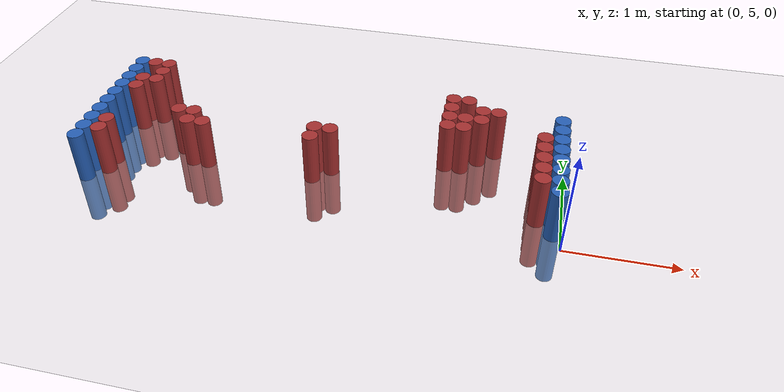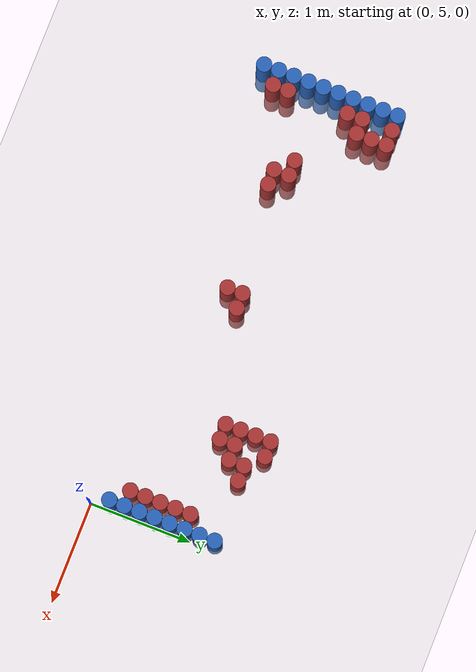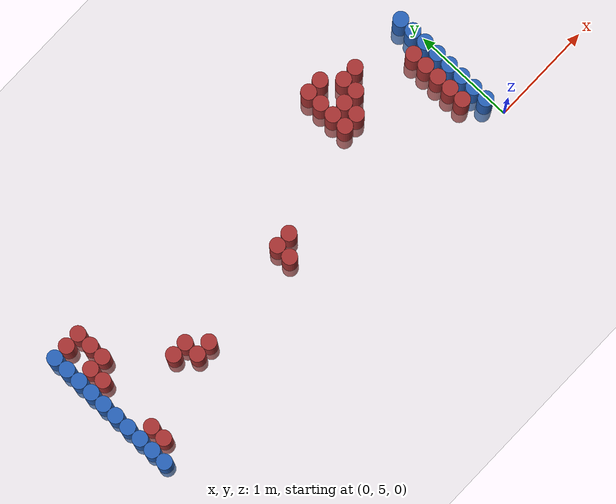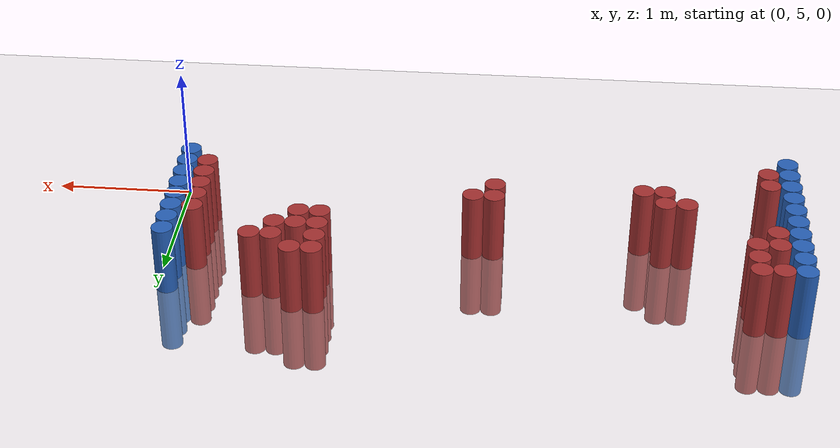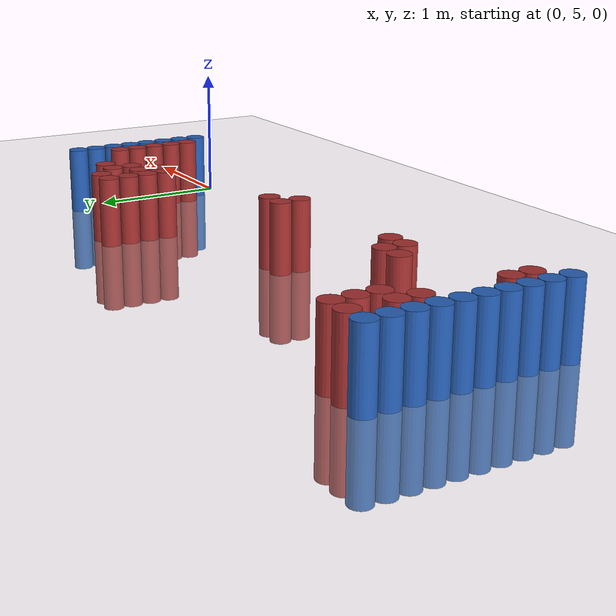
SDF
<sdf version="1.6">
 <world name="default">
  <model name="ground_plane">
   <static>1</static>
   <link name="link">
    <collision name="collision">
     <geometry><plane><normal>0 0 1</normal><size>100 100</size></plane></geometry>
     <surface><friction><ode><mu>100</mu><mu2>50</mu2></ode></friction></surface>
    </collision>
    <visual name="visual">
     <cast_shadows>0</cast_shadows>
     <geometry><plane><normal>0 0 1</normal><size>100 100</size></plane></geometry>
     <material>
      <script><uri>file://media/materials/scripts/gazebo.material</uri><name>Gazebo/Grey</name></script>
     </material>
    </visual>
   </link>
  </model>
  <model name="unit_cylinder_95">
   <static>1</static>
   <pose>-4.425000 5.025000 0.000000 0.000000 0.000000 0.000000</pose>
   <link name="link">
    <inertial>
     <mass>1</mass>
     <inertia><ixx>0.145833</ixx><ixy>0</ixy><ixz>0</ixz><iyy>0.145833</iyy><iyz>0</iyz><izz>0.125</izz></inertia>
    </inertial>
    <collision name="collision">
     <geometry><cylinder><radius>0.075000</radius><length>1</length></cylinder></geometry>
    </collision>
    <visual name="visual">
     <geometry><cylinder><radius>0.075000</radius><length>1</length></cylinder></geometry>
     <material>
      <ambient>0.152000 0.379000 0.720000 1</ambient>
      <diffuse>0.152000 0.379000 0.720000 1</diffuse>
     </material>
     <material>
      <script><name>Gazebo/Grey</name><uri>file://media/materials/scripts/gazebo.material</uri></script>
     </material>
    </visual>
   </link>
  </model>
  <model name="unit_cylinder_96">
   <static>1</static>
   <pose>-4.425000 5.175000 0.000000 0.000000 0.000000 0.000000</pose>
   <link name="link">
    <inertial>
     <mass>1</mass>
     <inertia><ixx>0.145833</ixx><ixy>0</ixy><ixz>0</ixz><iyy>0.145833</iyy><iyz>0</iyz><izz>0.125</izz></inertia>
    </inertial>
    <collision name="collision">
     <geometry><cylinder><radius>0.075000</radius><length>1</length></cylinder></geometry>
    </collision>
    <visual name="visual">
     <geometry><cylinder><radius>0.075000</radius><length>1</length></cylinder></geometry>
     <material>
      <ambient>0.152000 0.379000 0.720000 1</ambient>
      <diffuse>0.152000 0.379000 0.720000 1</diffuse>
     </material>
     <material>
      <script><name>Gazebo/Grey</name><uri>file://media/materials/scripts/gazebo.material</uri></script>
     </material>
    </visual>
   </link>
  </model>
  <model name="unit_cylinder_97">
   <static>1</static>
   <pose>-4.425000 5.325000 0.000000 0.000000 0.000000 0.000000</pose>
   <link name="link">
    <inertial>
     <mass>1</mass>
     <inertia><ixx>0.145833</ixx><ixy>0</ixy><ixz>0</ixz><iyy>0.145833</iyy><iyz>0</iyz><izz>0.125</izz></inertia>
    </inertial>
    <collision name="collision">
     <geometry><cylinder><radius>0.075000</radius><length>1</length></cylinder></geometry>
    </collision>
    <visual name="visual">
     <geometry><cylinder><radius>0.075000</radius><length>1</length></cylinder></geometry>
     <material>
      <ambient>0.152000 0.379000 0.720000 1</ambient>
      <diffuse>0.152000 0.379000 0.720000 1</diffuse>
     </material>
     <material>
      <script><name>Gazebo/Grey</name><uri>file://media/materials/scripts/gazebo.material</uri></script>
     </material>
    </visual>
   </link>
  </model>
  <model name="unit_cylinder_98">
   <static>1</static>
   <pose>-4.425000 5.475000 0.000000 0.000000 0.000000 0.000000</pose>
   <link name="link">
    <inertial>
     <mass>1</mass>
     <inertia><ixx>0.145833</ixx><ixy>0</ixy><ixz>0</ixz><iyy>0.145833</iyy><iyz>0</iyz><izz>0.125</izz></inertia>
    </inertial>
    <collision name="collision">
     <geometry><cylinder><radius>0.075000</radius><length>1</length></cylinder></geometry>
    </collision>
    <visual name="visual">
     <geometry><cylinder><radius>0.075000</radius><length>1</length></cylinder></geometry>
     <material>
      <ambient>0.152000 0.379000 0.720000 1</ambient>
      <diffuse>0.152000 0.379000 0.720000 1</diffuse>
     </material>
     <material>
      <script><name>Gazebo/Grey</name><uri>file://media/materials/scripts/gazebo.material</uri></script>
     </material>
    </visual>
   </link>
  </model>
  <model name="unit_cylinder_99">
   <static>1</static>
   <pose>-4.425000 5.625000 0.000000 0.000000 0.000000 0.000000</pose>
   <link name="link">
    <inertial>
     <mass>1</mass>
     <inertia><ixx>0.145833</ixx><ixy>0</ixy><ixz>0</ixz><iyy>0.145833</iyy><iyz>0</iyz><izz>0.125</izz></inertia>
    </inertial>
    <collision name="collision">
     <geometry><cylinder><radius>0.075000</radius><length>1</length></cylinder></geometry>
    </collision>
    <visual name="visual">
     <geometry><cylinder><radius>0.075000</radius><length>1</length></cylinder></geometry>
     <material>
      <ambient>0.152000 0.379000 0.720000 1</ambient>
      <diffuse>0.152000 0.379000 0.720000 1</diffuse>
     </material>
     <material>
      <script><name>Gazebo/Grey</name><uri>file://media/materials/scripts/gazebo.material</uri></script>
     </material>
    </visual>
   </link>
  </model>
  <model name="unit_cylinder_100">
   <static>1</static>
   <pose>-4.425000 5.775000 0.000000 0.000000 0.000000 0.000000</pose>
   <link name="link">
    <inertial>
     <mass>1</mass>
     <inertia><ixx>0.145833</ixx><ixy>0</ixy><ixz>0</ixz><iyy>0.145833</iyy><iyz>0</iyz><izz>0.125</izz></inertia>
    </inertial>
    <collision name="collision">
     <geometry><cylinder><radius>0.075000</radius><length>1</length></cylinder></geometry>
    </collision>
    <visual name="visual">
     <geometry><cylinder><radius>0.075000</radius><length>1</length></cylinder></geometry>
     <material>
      <ambient>0.152000 0.379000 0.720000 1</ambient>
      <diffuse>0.152000 0.379000 0.720000 1</diffuse>
     </material>
     <material>
      <script><name>Gazebo/Grey</name><uri>file://media/materials/scripts/gazebo.material</uri></script>
     </material>
    </visual>
   </link>
  </model>
  <model name="unit_cylinder_101">
   <static>1</static>
   <pose>-4.425000 5.925000 0.000000 0.000000 0.000000 0.000000</pose>
   <link name="link">
    <inertial>
     <mass>1</mass>
     <inertia><ixx>0.145833</ixx><ixy>0</ixy><ixz>0</ixz><iyy>0.145833</iyy><iyz>0</iyz><izz>0.125</izz></inertia>
    </inertial>
    <collision name="collision">
     <geometry><cylinder><radius>0.075000</radius><length>1</length></cylinder></geometry>
    </collision>
    <visual name="visual">
     <geometry><cylinder><radius>0.075000</radius><length>1</length></cylinder></geometry>
     <material>
      <ambient>0.152000 0.379000 0.720000 1</ambient>
      <diffuse>0.152000 0.379000 0.720000 1</diffuse>
     </material>
     <material>
      <script><name>Gazebo/Grey</name><uri>file://media/materials/scripts/gazebo.material</uri></script>
     </material>
    </visual>
   </link>
  </model>
  <model name="unit_cylinder_102">
   <static>1</static>
   <pose>-4.425000 6.075000 0.000000 0.000000 0.000000 0.000000</pose>
   <link name="link">
    <inertial>
     <mass>1</mass>
     <inertia><ixx>0.145833</ixx><ixy>0</ixy><ixz>0</ixz><iyy>0.145833</iyy><iyz>0</iyz><izz>0.125</izz></inertia>
    </inertial>
    <collision name="collision">
     <geometry><cylinder><radius>0.075000</radius><length>1</length></cylinder></geometry>
    </collision>
    <visual name="visual">
     <geometry><cylinder><radius>0.075000</radius><length>1</length></cylinder></geometry>
     <material>
      <ambient>0.152000 0.379000 0.720000 1</ambient>
      <diffuse>0.152000 0.379000 0.720000 1</diffuse>
     </material>
     <material>
      <script><name>Gazebo/Grey</name><uri>file://media/materials/scripts/gazebo.material</uri></script>
     </material>
    </visual>
   </link>
  </model>
  <model name="unit_cylinder_103">
   <static>1</static>
   <pose>-4.425000 6.225000 0.000000 0.000000 0.000000 0.000000</pose>
   <link name="link">
    <inertial>
     <mass>1</mass>
     <inertia><ixx>0.145833</ixx><ixy>0</ixy><ixz>0</ixz><iyy>0.145833</iyy><iyz>0</iyz><izz>0.125</izz></inertia>
    </inertial>
    <collision name="collision">
     <geometry><cylinder><radius>0.075000</radius><length>1</length></cylinder></geometry>
    </collision>
    <visual name="visual">
     <geometry><cylinder><radius>0.075000</radius><length>1</length></cylinder></geometry>
     <material>
      <ambient>0.152000 0.379000 0.720000 1</ambient>
      <diffuse>0.152000 0.379000 0.720000 1</diffuse>
     </material>
     <material>
      <script><name>Gazebo/Grey</name><uri>file://media/materials/scripts/gazebo.material</uri></script>
     </material>
    </visual>
   </link>
  </model>
  <model name="unit_cylinder_104">
   <static>1</static>
   <pose>-4.425000 6.375000 0.000000 0.000000 0.000000 0.000000</pose>
   <link name="link">
    <inertial>
     <mass>1</mass>
     <inertia><ixx>0.145833</ixx><ixy>0</ixy><ixz>0</ixz><iyy>0.145833</iyy><iyz>0</iyz><izz>0.125</izz></inertia>
    </inertial>
    <collision name="collision">
     <geometry><cylinder><radius>0.075000</radius><length>1</length></cylinder></geometry>
    </collision>
    <visual name="visual">
     <geometry><cylinder><radius>0.075000</radius><length>1</length></cylinder></geometry>
     <material>
      <ambient>0.152000 0.379000 0.720000 1</ambient>
      <diffuse>0.152000 0.379000 0.720000 1</diffuse>
     </material>
     <material>
      <script><name>Gazebo/Grey</name><uri>file://media/materials/scripts/gazebo.material</uri></script>
     </material>
    </visual>
   </link>
  </model>
  <model name="unit_cylinder_126">
   <static>1</static>
   <pose>-4.275000 5.175000 0.000000 0.000000 0.000000 0.000000</pose>
   <link name="link">
    <inertial>
     <mass>1</mass>
     <inertia><ixx>0.145833</ixx><ixy>0</ixy><ixz>0</ixz><iyy>0.145833</iyy><iyz>0</iyz><izz>0.125</izz></inertia>
    </inertial>
    <collision name="collision">
     <geometry><cylinder><radius>0.075000</radius><length>1</length></cylinder></geometry>
    </collision>
    <visual name="visual">
     <geometry><cylinder><radius>0.075000</radius><length>1</length></cylinder></geometry>
     <material>
      <ambient>0.648000 0.192000 0.192000 1</ambient>
      <diffuse>0.648000 0.192000 0.192000 1</diffuse>
     </material>
     <material>
      <script><name>Gazebo/Grey</name><uri>file://media/materials/scripts/gazebo.material</uri></script>
     </material>
    </visual>
   </link>
  </model>
  <model name="unit_cylinder_127">
   <static>1</static>
   <pose>-4.275000 5.325000 0.000000 0.000000 0.000000 0.000000</pose>
   <link name="link">
    <inertial>
     <mass>1</mass>
     <inertia><ixx>0.145833</ixx><ixy>0</ixy><ixz>0</ixz><iyy>0.145833</iyy><iyz>0</iyz><izz>0.125</izz></inertia>
    </inertial>
    <collision name="collision">
     <geometry><cylinder><radius>0.075000</radius><length>1</length></cylinder></geometry>
    </collision>
    <visual name="visual">
     <geometry><cylinder><radius>0.075000</radius><length>1</length></cylinder></geometry>
     <material>
      <ambient>0.648000 0.192000 0.192000 1</ambient>
      <diffuse>0.648000 0.192000 0.192000 1</diffuse>
     </material>
     <material>
      <script><name>Gazebo/Grey</name><uri>file://media/materials/scripts/gazebo.material</uri></script>
     </material>
    </visual>
   </link>
  </model>
  <model name="unit_cylinder_128">
   <static>1</static>
   <pose>-4.275000 5.925000 0.000000 0.000000 0.000000 0.000000</pose>
   <link name="link">
    <inertial>
     <mass>1</mass>
     <inertia><ixx>0.145833</ixx><ixy>0</ixy><ixz>0</ixz><iyy>0.145833</iyy><iyz>0</iyz><izz>0.125</izz></inertia>
    </inertial>
    <collision name="collision">
     <geometry><cylinder><radius>0.075000</radius><length>1</length></cylinder></geometry>
    </collision>
    <visual name="visual">
     <geometry><cylinder><radius>0.075000</radius><length>1</length></cylinder></geometry>
     <material>
      <ambient>0.648000 0.192000 0.192000 1</ambient>
      <diffuse>0.648000 0.192000 0.192000 1</diffuse>
     </material>
     <material>
      <script><name>Gazebo/Grey</name><uri>file://media/materials/scripts/gazebo.material</uri></script>
     </material>
    </visual>
   </link>
  </model>
  <model name="unit_cylinder_129">
   <static>1</static>
   <pose>-4.275000 6.075000 0.000000 0.000000 0.000000 0.000000</pose>
   <link name="link">
    <inertial>
     <mass>1</mass>
     <inertia><ixx>0.145833</ixx><ixy>0</ixy><ixz>0</ixz><iyy>0.145833</iyy><iyz>0</iyz><izz>0.125</izz></inertia>
    </inertial>
    <collision name="collision">
     <geometry><cylinder><radius>0.075000</radius><length>1</length></cylinder></geometry>
    </collision>
    <visual name="visual">
     <geometry><cylinder><radius>0.075000</radius><length>1</length></cylinder></geometry>
     <material>
      <ambient>0.648000 0.192000 0.192000 1</ambient>
      <diffuse>0.648000 0.192000 0.192000 1</diffuse>
     </material>
     <material>
      <script><name>Gazebo/Grey</name><uri>file://media/materials/scripts/gazebo.material</uri></script>
     </material>
    </visual>
   </link>
  </model>
  <model name="unit_cylinder_130">
   <static>1</static>
   <pose>-4.275000 6.375000 0.000000 0.000000 0.000000 0.000000</pose>
   <link name="link">
    <inertial>
     <mass>1</mass>
     <inertia><ixx>0.145833</ixx><ixy>0</ixy><ixz>0</ixz><iyy>0.145833</iyy><iyz>0</iyz><izz>0.125</izz></inertia>
    </inertial>
    <collision name="collision">
     <geometry><cylinder><radius>0.075000</radius><length>1</length></cylinder></geometry>
    </collision>
    <visual name="visual">
     <geometry><cylinder><radius>0.075000</radius><length>1</length></cylinder></geometry>
     <material>
      <ambient>0.648000 0.192000 0.192000 1</ambient>
      <diffuse>0.648000 0.192000 0.192000 1</diffuse>
     </material>
     <material>
      <script><name>Gazebo/Grey</name><uri>file://media/materials/scripts/gazebo.material</uri></script>
     </material>
    </visual>
   </link>
  </model>
  <model name="unit_cylinder_142">
   <static>1</static>
   <pose>-4.125000 6.075000 0.000000 0.000000 0.000000 0.000000</pose>
   <link name="link">
    <inertial>
     <mass>1</mass>
     <inertia><ixx>0.145833</ixx><ixy>0</ixy><ixz>0</ixz><iyy>0.145833</iyy><iyz>0</iyz><izz>0.125</izz></inertia>
    </inertial>
    <collision name="collision">
     <geometry><cylinder><radius>0.075000</radius><length>1</length></cylinder></geometry>
    </collision>
    <visual name="visual">
     <geometry><cylinder><radius>0.075000</radius><length>1</length></cylinder></geometry>
     <material>
      <ambient>0.648000 0.192000 0.192000 1</ambient>
      <diffuse>0.648000 0.192000 0.192000 1</diffuse>
     </material>
     <material>
      <script><name>Gazebo/Grey</name><uri>file://media/materials/scripts/gazebo.material</uri></script>
     </material>
    </visual>
   </link>
  </model>
  <model name="unit_cylinder_143">
   <static>1</static>
   <pose>-4.125000 6.225000 0.000000 0.000000 0.000000 0.000000</pose>
   <link name="link">
    <inertial>
     <mass>1</mass>
     <inertia><ixx>0.145833</ixx><ixy>0</ixy><ixz>0</ixz><iyy>0.145833</iyy><iyz>0</iyz><izz>0.125</izz></inertia>
    </inertial>
    <collision name="collision">
     <geometry><cylinder><radius>0.075000</radius><length>1</length></cylinder></geometry>
    </collision>
    <visual name="visual">
     <geometry><cylinder><radius>0.075000</radius><length>1</length></cylinder></geometry>
     <material>
      <ambient>0.648000 0.192000 0.192000 1</ambient>
      <diffuse>0.648000 0.192000 0.192000 1</diffuse>
     </material>
     <material>
      <script><name>Gazebo/Grey</name><uri>file://media/materials/scripts/gazebo.material</uri></script>
     </material>
    </visual>
   </link>
  </model>
  <model name="unit_cylinder_144">
   <static>1</static>
   <pose>-4.125000 6.375000 0.000000 0.000000 0.000000 0.000000</pose>
   <link name="link">
    <inertial>
     <mass>1</mass>
     <inertia><ixx>0.145833</ixx><ixy>0</ixy><ixz>0</ixz><iyy>0.145833</iyy><iyz>0</iyz><izz>0.125</izz></inertia>
    </inertial>
    <collision name="collision">
     <geometry><cylinder><radius>0.075000</radius><length>1</length></cylinder></geometry>
    </collision>
    <visual name="visual">
     <geometry><cylinder><radius>0.075000</radius><length>1</length></cylinder></geometry>
     <material>
      <ambient>0.648000 0.192000 0.192000 1</ambient>
      <diffuse>0.648000 0.192000 0.192000 1</diffuse>
     </material>
     <material>
      <script><name>Gazebo/Grey</name><uri>file://media/materials/scripts/gazebo.material</uri></script>
     </material>
    </visual>
   </link>
  </model>
  <model name="unit_cylinder_145">
   <static>1</static>
   <pose>-3.675000 5.625000 0.000000 0.000000 0.000000 0.000000</pose>
   <link name="link">
    <inertial>
     <mass>1</mass>
     <inertia><ixx>0.145833</ixx><ixy>0</ixy><ixz>0</ixz><iyy>0.145833</iyy><iyz>0</iyz><izz>0.125</izz></inertia>
    </inertial>
    <collision name="collision">
     <geometry><cylinder><radius>0.075000</radius><length>1</length></cylinder></geometry>
    </collision>
    <visual name="visual">
     <geometry><cylinder><radius>0.075000</radius><length>1</length></cylinder></geometry>
     <material>
      <ambient>0.648000 0.192000 0.192000 1</ambient>
      <diffuse>0.648000 0.192000 0.192000 1</diffuse>
     </material>
     <material>
      <script><name>Gazebo/Grey</name><uri>file://media/materials/scripts/gazebo.material</uri></script>
     </material>
    </visual>
   </link>
  </model>
  <model name="unit_cylinder_146">
   <static>1</static>
   <pose>-3.525000 5.475000 0.000000 0.000000 0.000000 0.000000</pose>
   <link name="link">
    <inertial>
     <mass>1</mass>
     <inertia><ixx>0.145833</ixx><ixy>0</ixy><ixz>0</ixz><iyy>0.145833</iyy><iyz>0</iyz><izz>0.125</izz></inertia>
    </inertial>
    <collision name="collision">
     <geometry><cylinder><radius>0.075000</radius><length>1</length></cylinder></geometry>
    </collision>
    <visual name="visual">
     <geometry><cylinder><radius>0.075000</radius><length>1</length></cylinder></geometry>
     <material>
      <ambient>0.648000 0.192000 0.192000 1</ambient>
      <diffuse>0.648000 0.192000 0.192000 1</diffuse>
     </material>
     <material>
      <script><name>Gazebo/Grey</name><uri>file://media/materials/scripts/gazebo.material</uri></script>
     </material>
    </visual>
   </link>
  </model>
  <model name="unit_cylinder_147">
   <static>1</static>
   <pose>-3.525000 5.625000 0.000000 0.000000 0.000000 0.000000</pose>
   <link name="link">
    <inertial>
     <mass>1</mass>
     <inertia><ixx>0.145833</ixx><ixy>0</ixy><ixz>0</ixz><iyy>0.145833</iyy><iyz>0</iyz><izz>0.125</izz></inertia>
    </inertial>
    <collision name="collision">
     <geometry><cylinder><radius>0.075000</radius><length>1</length></cylinder></geometry>
    </collision>
    <visual name="visual">
     <geometry><cylinder><radius>0.075000</radius><length>1</length></cylinder></geometry>
     <material>
      <ambient>0.648000 0.192000 0.192000 1</ambient>
      <diffuse>0.648000 0.192000 0.192000 1</diffuse>
     </material>
     <material>
      <script><name>Gazebo/Grey</name><uri>file://media/materials/scripts/gazebo.material</uri></script>
     </material>
    </visual>
   </link>
  </model>
  <model name="unit_cylinder_148">
   <static>1</static>
   <pose>-3.375000 5.475000 0.000000 0.000000 0.000000 0.000000</pose>
   <link name="link">
    <inertial>
     <mass>1</mass>
     <inertia><ixx>0.145833</ixx><ixy>0</ixy><ixz>0</ixz><iyy>0.145833</iyy><iyz>0</iyz><izz>0.125</izz></inertia>
    </inertial>
    <collision name="collision">
     <geometry><cylinder><radius>0.075000</radius><length>1</length></cylinder></geometry>
    </collision>
    <visual name="visual">
     <geometry><cylinder><radius>0.075000</radius><length>1</length></cylinder></geometry>
     <material>
      <ambient>0.648000 0.192000 0.192000 1</ambient>
      <diffuse>0.648000 0.192000 0.192000 1</diffuse>
     </material>
     <material>
      <script><name>Gazebo/Grey</name><uri>file://media/materials/scripts/gazebo.material</uri></script>
     </material>
    </visual>
   </link>
  </model>
  <model name="unit_cylinder_155">
   <static>1</static>
   <pose>-2.325000 5.475000 0.000000 0.000000 0.000000 0.000000</pose>
   <link name="link">
    <inertial>
     <mass>1</mass>
     <inertia><ixx>0.145833</ixx><ixy>0</ixy><ixz>0</ixz><iyy>0.145833</iyy><iyz>0</iyz><izz>0.125</izz></inertia>
    </inertial>
    <collision name="collision">
     <geometry><cylinder><radius>0.075000</radius><length>1</length></cylinder></geometry>
    </collision>
    <visual name="visual">
     <geometry><cylinder><radius>0.075000</radius><length>1</length></cylinder></geometry>
     <material>
      <ambient>0.648000 0.192000 0.192000 1</ambient>
      <diffuse>0.648000 0.192000 0.192000 1</diffuse>
     </material>
     <material>
      <script><name>Gazebo/Grey</name><uri>file://media/materials/scripts/gazebo.material</uri></script>
     </material>
    </visual>
   </link>
  </model>
  <model name="unit_cylinder_156">
   <static>1</static>
   <pose>-2.325000 5.625000 0.000000 0.000000 0.000000 0.000000</pose>
   <link name="link">
    <inertial>
     <mass>1</mass>
     <inertia><ixx>0.145833</ixx><ixy>0</ixy><ixz>0</ixz><iyy>0.145833</iyy><iyz>0</iyz><izz>0.125</izz></inertia>
    </inertial>
    <collision name="collision">
     <geometry><cylinder><radius>0.075000</radius><length>1</length></cylinder></geometry>
    </collision>
    <visual name="visual">
     <geometry><cylinder><radius>0.075000</radius><length>1</length></cylinder></geometry>
     <material>
      <ambient>0.648000 0.192000 0.192000 1</ambient>
      <diffuse>0.648000 0.192000 0.192000 1</diffuse>
     </material>
     <material>
      <script><name>Gazebo/Grey</name><uri>file://media/materials/scripts/gazebo.material</uri></script>
     </material>
    </visual>
   </link>
  </model>
  <model name="unit_cylinder_157">
   <static>1</static>
   <pose>-2.175000 5.625000 0.000000 0.000000 0.000000 0.000000</pose>
   <link name="link">
    <inertial>
     <mass>1</mass>
     <inertia><ixx>0.145833</ixx><ixy>0</ixy><ixz>0</ixz><iyy>0.145833</iyy><iyz>0</iyz><izz>0.125</izz></inertia>
    </inertial>
    <collision name="collision">
     <geometry><cylinder><radius>0.075000</radius><length>1</length></cylinder></geometry>
    </collision>
    <visual name="visual">
     <geometry><cylinder><radius>0.075000</radius><length>1</length></cylinder></geometry>
     <material>
      <ambient>0.648000 0.192000 0.192000 1</ambient>
      <diffuse>0.648000 0.192000 0.192000 1</diffuse>
     </material>
     <material>
      <script><name>Gazebo/Grey</name><uri>file://media/materials/scripts/gazebo.material</uri></script>
     </material>
    </visual>
   </link>
  </model>
  <model name="unit_cylinder_174">
   <static>1</static>
   <pose>-1.125000 5.925000 0.000000 0.000000 0.000000 0.000000</pose>
   <link name="link">
    <inertial>
     <mass>1</mass>
     <inertia><ixx>0.145833</ixx><ixy>0</ixy><ixz>0</ixz><iyy>0.145833</iyy><iyz>0</iyz><izz>0.125</izz></inertia>
    </inertial>
    <collision name="collision">
     <geometry><cylinder><radius>0.075000</radius><length>1</length></cylinder></geometry>
    </collision>
    <visual name="visual">
     <geometry><cylinder><radius>0.075000</radius><length>1</length></cylinder></geometry>
     <material>
      <ambient>0.648000 0.192000 0.192000 1</ambient>
      <diffuse>0.648000 0.192000 0.192000 1</diffuse>
     </material>
     <material>
      <script><name>Gazebo/Grey</name><uri>file://media/materials/scripts/gazebo.material</uri></script>
     </material>
    </visual>
   </link>
  </model>
  <model name="unit_cylinder_175">
   <static>1</static>
   <pose>-1.125000 6.075000 0.000000 0.000000 0.000000 0.000000</pose>
   <link name="link">
    <inertial>
     <mass>1</mass>
     <inertia><ixx>0.145833</ixx><ixy>0</ixy><ixz>0</ixz><iyy>0.145833</iyy><iyz>0</iyz><izz>0.125</izz></inertia>
    </inertial>
    <collision name="collision">
     <geometry><cylinder><radius>0.075000</radius><length>1</length></cylinder></geometry>
    </collision>
    <visual name="visual">
     <geometry><cylinder><radius>0.075000</radius><length>1</length></cylinder></geometry>
     <material>
      <ambient>0.648000 0.192000 0.192000 1</ambient>
      <diffuse>0.648000 0.192000 0.192000 1</diffuse>
     </material>
     <material>
      <script><name>Gazebo/Grey</name><uri>file://media/materials/scripts/gazebo.material</uri></script>
     </material>
    </visual>
   </link>
  </model>
  <model name="unit_cylinder_176">
   <static>1</static>
   <pose>-1.125000 6.225000 0.000000 0.000000 0.000000 0.000000</pose>
   <link name="link">
    <inertial>
     <mass>1</mass>
     <inertia><ixx>0.145833</ixx><ixy>0</ixy><ixz>0</ixz><iyy>0.145833</iyy><iyz>0</iyz><izz>0.125</izz></inertia>
    </inertial>
    <collision name="collision">
     <geometry><cylinder><radius>0.075000</radius><length>1</length></cylinder></geometry>
    </collision>
    <visual name="visual">
     <geometry><cylinder><radius>0.075000</radius><length>1</length></cylinder></geometry>
     <material>
      <ambient>0.648000 0.192000 0.192000 1</ambient>
      <diffuse>0.648000 0.192000 0.192000 1</diffuse>
     </material>
     <material>
      <script><name>Gazebo/Grey</name><uri>file://media/materials/scripts/gazebo.material</uri></script>
     </material>
    </visual>
   </link>
  </model>
  <model name="unit_cylinder_177">
   <static>1</static>
   <pose>-1.125000 6.375000 0.000000 0.000000 0.000000 0.000000</pose>
   <link name="link">
    <inertial>
     <mass>1</mass>
     <inertia><ixx>0.145833</ixx><ixy>0</ixy><ixz>0</ixz><iyy>0.145833</iyy><iyz>0</iyz><izz>0.125</izz></inertia>
    </inertial>
    <collision name="collision">
     <geometry><cylinder><radius>0.075000</radius><length>1</length></cylinder></geometry>
    </collision>
    <visual name="visual">
     <geometry><cylinder><radius>0.075000</radius><length>1</length></cylinder></geometry>
     <material>
      <ambient>0.648000 0.192000 0.192000 1</ambient>
      <diffuse>0.648000 0.192000 0.192000 1</diffuse>
     </material>
     <material>
      <script><name>Gazebo/Grey</name><uri>file://media/materials/scripts/gazebo.material</uri></script>
     </material>
    </visual>
   </link>
  </model>
  <model name="unit_cylinder_179">
   <static>1</static>
   <pose>-0.975000 5.925000 0.000000 0.000000 0.000000 0.000000</pose>
   <link name="link">
    <inertial>
     <mass>1</mass>
     <inertia><ixx>0.145833</ixx><ixy>0</ixy><ixz>0</ixz><iyy>0.145833</iyy><iyz>0</iyz><izz>0.125</izz></inertia>
    </inertial>
    <collision name="collision">
     <geometry><cylinder><radius>0.075000</radius><length>1</length></cylinder></geometry>
    </collision>
    <visual name="visual">
     <geometry><cylinder><radius>0.075000</radius><length>1</length></cylinder></geometry>
     <material>
      <ambient>0.648000 0.192000 0.192000 1</ambient>
      <diffuse>0.648000 0.192000 0.192000 1</diffuse>
     </material>
     <material>
      <script><name>Gazebo/Grey</name><uri>file://media/materials/scripts/gazebo.material</uri></script>
     </material>
    </visual>
   </link>
  </model>
  <model name="unit_cylinder_180">
   <static>1</static>
   <pose>-0.975000 6.075000 0.000000 0.000000 0.000000 0.000000</pose>
   <link name="link">
    <inertial>
     <mass>1</mass>
     <inertia><ixx>0.145833</ixx><ixy>0</ixy><ixz>0</ixz><iyy>0.145833</iyy><iyz>0</iyz><izz>0.125</izz></inertia>
    </inertial>
    <collision name="collision">
     <geometry><cylinder><radius>0.075000</radius><length>1</length></cylinder></geometry>
    </collision>
    <visual name="visual">
     <geometry><cylinder><radius>0.075000</radius><length>1</length></cylinder></geometry>
     <material>
      <ambient>0.648000 0.192000 0.192000 1</ambient>
      <diffuse>0.648000 0.192000 0.192000 1</diffuse>
     </material>
     <material>
      <script><name>Gazebo/Grey</name><uri>file://media/materials/scripts/gazebo.material</uri></script>
     </material>
    </visual>
   </link>
  </model>
  <model name="unit_cylinder_181">
   <static>1</static>
   <pose>-0.975000 6.375000 0.000000 0.000000 0.000000 0.000000</pose>
   <link name="link">
    <inertial>
     <mass>1</mass>
     <inertia><ixx>0.145833</ixx><ixy>0</ixy><ixz>0</ixz><iyy>0.145833</iyy><iyz>0</iyz><izz>0.125</izz></inertia>
    </inertial>
    <collision name="collision">
     <geometry><cylinder><radius>0.075000</radius><length>1</length></cylinder></geometry>
    </collision>
    <visual name="visual">
     <geometry><cylinder><radius>0.075000</radius><length>1</length></cylinder></geometry>
     <material>
      <ambient>0.648000 0.192000 0.192000 1</ambient>
      <diffuse>0.648000 0.192000 0.192000 1</diffuse>
     </material>
     <material>
      <script><name>Gazebo/Grey</name><uri>file://media/materials/scripts/gazebo.material</uri></script>
     </material>
    </visual>
   </link>
  </model>
  <model name="unit_cylinder_188">
   <static>1</static>
   <pose>-0.825000 6.075000 0.000000 0.000000 0.000000 0.000000</pose>
   <link name="link">
    <inertial>
     <mass>1</mass>
     <inertia><ixx>0.145833</ixx><ixy>0</ixy><ixz>0</ixz><iyy>0.145833</iyy><iyz>0</iyz><izz>0.125</izz></inertia>
    </inertial>
    <collision name="collision">
     <geometry><cylinder><radius>0.075000</radius><length>1</length></cylinder></geometry>
    </collision>
    <visual name="visual">
     <geometry><cylinder><radius>0.075000</radius><length>1</length></cylinder></geometry>
     <material>
      <ambient>0.648000 0.192000 0.192000 1</ambient>
      <diffuse>0.648000 0.192000 0.192000 1</diffuse>
     </material>
     <material>
      <script><name>Gazebo/Grey</name><uri>file://media/materials/scripts/gazebo.material</uri></script>
     </material>
    </visual>
   </link>
  </model>
  <model name="unit_cylinder_189">
   <static>1</static>
   <pose>-0.825000 6.225000 0.000000 0.000000 0.000000 0.000000</pose>
   <link name="link">
    <inertial>
     <mass>1</mass>
     <inertia><ixx>0.145833</ixx><ixy>0</ixy><ixz>0</ixz><iyy>0.145833</iyy><iyz>0</iyz><izz>0.125</izz></inertia>
    </inertial>
    <collision name="collision">
     <geometry><cylinder><radius>0.075000</radius><length>1</length></cylinder></geometry>
    </collision>
    <visual name="visual">
     <geometry><cylinder><radius>0.075000</radius><length>1</length></cylinder></geometry>
     <material>
      <ambient>0.648000 0.192000 0.192000 1</ambient>
      <diffuse>0.648000 0.192000 0.192000 1</diffuse>
     </material>
     <material>
      <script><name>Gazebo/Grey</name><uri>file://media/materials/scripts/gazebo.material</uri></script>
     </material>
    </visual>
   </link>
  </model>
  <model name="unit_cylinder_196">
   <static>1</static>
   <pose>-0.675000 6.225000 0.000000 0.000000 0.000000 0.000000</pose>
   <link name="link">
    <inertial>
     <mass>1</mass>
     <inertia><ixx>0.145833</ixx><ixy>0</ixy><ixz>0</ixz><iyy>0.145833</iyy><iyz>0</iyz><izz>0.125</izz></inertia>
    </inertial>
    <collision name="collision">
     <geometry><cylinder><radius>0.075000</radius><length>1</length></cylinder></geometry>
    </collision>
    <visual name="visual">
     <geometry><cylinder><radius>0.075000</radius><length>1</length></cylinder></geometry>
     <material>
      <ambient>0.648000 0.192000 0.192000 1</ambient>
      <diffuse>0.648000 0.192000 0.192000 1</diffuse>
     </material>
     <material>
      <script><name>Gazebo/Grey</name><uri>file://media/materials/scripts/gazebo.material</uri></script>
     </material>
    </visual>
   </link>
  </model>
  <model name="unit_cylinder_198">
   <static>1</static>
   <pose>-0.225000 5.325000 0.000000 0.000000 0.000000 0.000000</pose>
   <link name="link">
    <inertial>
     <mass>1</mass>
     <inertia><ixx>0.145833</ixx><ixy>0</ixy><ixz>0</ixz><iyy>0.145833</iyy><iyz>0</iyz><izz>0.125</izz></inertia>
    </inertial>
    <collision name="collision">
     <geometry><cylinder><radius>0.075000</radius><length>1</length></cylinder></geometry>
    </collision>
    <visual name="visual">
     <geometry><cylinder><radius>0.075000</radius><length>1</length></cylinder></geometry>
     <material>
      <ambient>0.648000 0.192000 0.192000 1</ambient>
      <diffuse>0.648000 0.192000 0.192000 1</diffuse>
     </material>
     <material>
      <script><name>Gazebo/Grey</name><uri>file://media/materials/scripts/gazebo.material</uri></script>
     </material>
    </visual>
   </link>
  </model>
  <model name="unit_cylinder_199">
   <static>1</static>
   <pose>-0.225000 5.475000 0.000000 0.000000 0.000000 0.000000</pose>
   <link name="link">
    <inertial>
     <mass>1</mass>
     <inertia><ixx>0.145833</ixx><ixy>0</ixy><ixz>0</ixz><iyy>0.145833</iyy><iyz>0</iyz><izz>0.125</izz></inertia>
    </inertial>
    <collision name="collision">
     <geometry><cylinder><radius>0.075000</radius><length>1</length></cylinder></geometry>
    </collision>
    <visual name="visual">
     <geometry><cylinder><radius>0.075000</radius><length>1</length></cylinder></geometry>
     <material>
      <ambient>0.648000 0.192000 0.192000 1</ambient>
      <diffuse>0.648000 0.192000 0.192000 1</diffuse>
     </material>
     <material>
      <script><name>Gazebo/Grey</name><uri>file://media/materials/scripts/gazebo.material</uri></script>
     </material>
    </visual>
   </link>
  </model>
  <model name="unit_cylinder_200">
   <static>1</static>
   <pose>-0.225000 5.625000 0.000000 0.000000 0.000000 0.000000</pose>
   <link name="link">
    <inertial>
     <mass>1</mass>
     <inertia><ixx>0.145833</ixx><ixy>0</ixy><ixz>0</ixz><iyy>0.145833</iyy><iyz>0</iyz><izz>0.125</izz></inertia>
    </inertial>
    <collision name="collision">
     <geometry><cylinder><radius>0.075000</radius><length>1</length></cylinder></geometry>
    </collision>
    <visual name="visual">
     <geometry><cylinder><radius>0.075000</radius><length>1</length></cylinder></geometry>
     <material>
      <ambient>0.648000 0.192000 0.192000 1</ambient>
      <diffuse>0.648000 0.192000 0.192000 1</diffuse>
     </material>
     <material>
      <script><name>Gazebo/Grey</name><uri>file://media/materials/scripts/gazebo.material</uri></script>
     </material>
    </visual>
   </link>
  </model>
  <model name="unit_cylinder_201">
   <static>1</static>
   <pose>-0.225000 5.775000 0.000000 0.000000 0.000000 0.000000</pose>
   <link name="link">
    <inertial>
     <mass>1</mass>
     <inertia><ixx>0.145833</ixx><ixy>0</ixy><ixz>0</ixz><iyy>0.145833</iyy><iyz>0</iyz><izz>0.125</izz></inertia>
    </inertial>
    <collision name="collision">
     <geometry><cylinder><radius>0.075000</radius><length>1</length></cylinder></geometry>
    </collision>
    <visual name="visual">
     <geometry><cylinder><radius>0.075000</radius><length>1</length></cylinder></geometry>
     <material>
      <ambient>0.648000 0.192000 0.192000 1</ambient>
      <diffuse>0.648000 0.192000 0.192000 1</diffuse>
     </material>
     <material>
      <script><name>Gazebo/Grey</name><uri>file://media/materials/scripts/gazebo.material</uri></script>
     </material>
    </visual>
   </link>
  </model>
  <model name="unit_cylinder_202">
   <static>1</static>
   <pose>-0.225000 5.925000 0.000000 0.000000 0.000000 0.000000</pose>
   <link name="link">
    <inertial>
     <mass>1</mass>
     <inertia><ixx>0.145833</ixx><ixy>0</ixy><ixz>0</ixz><iyy>0.145833</iyy><iyz>0</iyz><izz>0.125</izz></inertia>
    </inertial>
    <collision name="collision">
     <geometry><cylinder><radius>0.075000</radius><length>1</length></cylinder></geometry>
    </collision>
    <visual name="visual">
     <geometry><cylinder><radius>0.075000</radius><length>1</length></cylinder></geometry>
     <material>
      <ambient>0.648000 0.192000 0.192000 1</ambient>
      <diffuse>0.648000 0.192000 0.192000 1</diffuse>
     </material>
     <material>
      <script><name>Gazebo/Grey</name><uri>file://media/materials/scripts/gazebo.material</uri></script>
     </material>
    </visual>
   </link>
  </model>
  <model name="unit_cylinder_208">
   <static>1</static>
   <pose>-0.075000 5.175000 0.000000 0.000000 0.000000 0.000000</pose>
   <link name="link">
    <inertial>
     <mass>1</mass>
     <inertia><ixx>0.145833</ixx><ixy>0</ixy><ixz>0</ixz><iyy>0.145833</iyy><iyz>0</iyz><izz>0.125</izz></inertia>
    </inertial>
    <collision name="collision">
     <geometry><cylinder><radius>0.075000</radius><length>1</length></cylinder></geometry>
    </collision>
    <visual name="visual">
     <geometry><cylinder><radius>0.075000</radius><length>1</length></cylinder></geometry>
     <material>
      <ambient>0.152000 0.379000 0.720000 1</ambient>
      <diffuse>0.152000 0.379000 0.720000 1</diffuse>
     </material>
     <material>
      <script><name>Gazebo/Grey</name><uri>file://media/materials/scripts/gazebo.material</uri></script>
     </material>
    </visual>
   </link>
  </model>
  <model name="unit_cylinder_209">
   <static>1</static>
   <pose>-0.075000 5.325000 0.000000 0.000000 0.000000 0.000000</pose>
   <link name="link">
    <inertial>
     <mass>1</mass>
     <inertia><ixx>0.145833</ixx><ixy>0</ixy><ixz>0</ixz><iyy>0.145833</iyy><iyz>0</iyz><izz>0.125</izz></inertia>
    </inertial>
    <collision name="collision">
     <geometry><cylinder><radius>0.075000</radius><length>1</length></cylinder></geometry>
    </collision>
    <visual name="visual">
     <geometry><cylinder><radius>0.075000</radius><length>1</length></cylinder></geometry>
     <material>
      <ambient>0.152000 0.379000 0.720000 1</ambient>
      <diffuse>0.152000 0.379000 0.720000 1</diffuse>
     </material>
     <material>
      <script><name>Gazebo/Grey</name><uri>file://media/materials/scripts/gazebo.material</uri></script>
     </material>
    </visual>
   </link>
  </model>
  <model name="unit_cylinder_210">
   <static>1</static>
   <pose>-0.075000 5.475000 0.000000 0.000000 0.000000 0.000000</pose>
   <link name="link">
    <inertial>
     <mass>1</mass>
     <inertia><ixx>0.145833</ixx><ixy>0</ixy><ixz>0</ixz><iyy>0.145833</iyy><iyz>0</iyz><izz>0.125</izz></inertia>
    </inertial>
    <collision name="collision">
     <geometry><cylinder><radius>0.075000</radius><length>1</length></cylinder></geometry>
    </collision>
    <visual name="visual">
     <geometry><cylinder><radius>0.075000</radius><length>1</length></cylinder></geometry>
     <material>
      <ambient>0.152000 0.379000 0.720000 1</ambient>
      <diffuse>0.152000 0.379000 0.720000 1</diffuse>
     </material>
     <material>
      <script><name>Gazebo/Grey</name><uri>file://media/materials/scripts/gazebo.material</uri></script>
     </material>
    </visual>
   </link>
  </model>
  <model name="unit_cylinder_211">
   <static>1</static>
   <pose>-0.075000 5.625000 0.000000 0.000000 0.000000 0.000000</pose>
   <link name="link">
    <inertial>
     <mass>1</mass>
     <inertia><ixx>0.145833</ixx><ixy>0</ixy><ixz>0</ixz><iyy>0.145833</iyy><iyz>0</iyz><izz>0.125</izz></inertia>
    </inertial>
    <collision name="collision">
     <geometry><cylinder><radius>0.075000</radius><length>1</length></cylinder></geometry>
    </collision>
    <visual name="visual">
     <geometry><cylinder><radius>0.075000</radius><length>1</length></cylinder></geometry>
     <material>
      <ambient>0.152000 0.379000 0.720000 1</ambient>
      <diffuse>0.152000 0.379000 0.720000 1</diffuse>
     </material>
     <material>
      <script><name>Gazebo/Grey</name><uri>file://media/materials/scripts/gazebo.material</uri></script>
     </material>
    </visual>
   </link>
  </model>
  <model name="unit_cylinder_212">
   <static>1</static>
   <pose>-0.075000 5.775000 0.000000 0.000000 0.000000 0.000000</pose>
   <link name="link">
    <inertial>
     <mass>1</mass>
     <inertia><ixx>0.145833</ixx><ixy>0</ixy><ixz>0</ixz><iyy>0.145833</iyy><iyz>0</iyz><izz>0.125</izz></inertia>
    </inertial>
    <collision name="collision">
     <geometry><cylinder><radius>0.075000</radius><length>1</length></cylinder></geometry>
    </collision>
    <visual name="visual">
     <geometry><cylinder><radius>0.075000</radius><length>1</length></cylinder></geometry>
     <material>
      <ambient>0.152000 0.379000 0.720000 1</ambient>
      <diffuse>0.152000 0.379000 0.720000 1</diffuse>
     </material>
     <material>
      <script><name>Gazebo/Grey</name><uri>file://media/materials/scripts/gazebo.material</uri></script>
     </material>
    </visual>
   </link>
  </model>
  <model name="unit_cylinder_213">
   <static>1</static>
   <pose>-0.075000 5.925000 0.000000 0.000000 0.000000 0.000000</pose>
   <link name="link">
    <inertial>
     <mass>1</mass>
     <inertia><ixx>0.145833</ixx><ixy>0</ixy><ixz>0</ixz><iyy>0.145833</iyy><iyz>0</iyz><izz>0.125</izz></inertia>
    </inertial>
    <collision name="collision">
     <geometry><cylinder><radius>0.075000</radius><length>1</length></cylinder></geometry>
    </collision>
    <visual name="visual">
     <geometry><cylinder><radius>0.075000</radius><length>1</length></cylinder></geometry>
     <material>
      <ambient>0.152000 0.379000 0.720000 1</ambient>
      <diffuse>0.152000 0.379000 0.720000 1</diffuse>
     </material>
     <material>
      <script><name>Gazebo/Grey</name><uri>file://media/materials/scripts/gazebo.material</uri></script>
     </material>
    </visual>
   </link>
  </model>
  <model name="unit_cylinder_214">
   <static>1</static>
   <pose>-0.075000 6.075000 0.000000 0.000000 0.000000 0.000000</pose>
   <link name="link">
    <inertial>
     <mass>1</mass>
     <inertia><ixx>0.145833</ixx><ixy>0</ixy><ixz>0</ixz><iyy>0.145833</iyy><iyz>0</iyz><izz>0.125</izz></inertia>
    </inertial>
    <collision name="collision">
     <geometry><cylinder><radius>0.075000</radius><length>1</length></cylinder></geometry>
    </collision>
    <visual name="visual">
     <geometry><cylinder><radius>0.075000</radius><length>1</length></cylinder></geometry>
     <material>
      <ambient>0.152000 0.379000 0.720000 1</ambient>
      <diffuse>0.152000 0.379000 0.720000 1</diffuse>
     </material>
     <material>
      <script><name>Gazebo/Grey</name><uri>file://media/materials/scripts/gazebo.material</uri></script>
     </material>
    </visual>
   </link>
  </model>
  <model name="unit_cylinder_215">
   <static>1</static>
   <pose>-0.075000 6.225000 0.000000 0.000000 0.000000 0.000000</pose>
   <link name="link">
    <inertial>
     <mass>1</mass>
     <inertia><ixx>0.145833</ixx><ixy>0</ixy><ixz>0</ixz><iyy>0.145833</iyy><iyz>0</iyz><izz>0.125</izz></inertia>
    </inertial>
    <collision name="collision">
     <geometry><cylinder><radius>0.075000</radius><length>1</length></cylinder></geometry>
    </collision>
    <visual name="visual">
     <geometry><cylinder><radius>0.075000</radius><length>1</length></cylinder></geometry>
     <material>
      <ambient>0.152000 0.379000 0.720000 1</ambient>
      <diffuse>0.152000 0.379000 0.720000 1</diffuse>
     </material>
     <material>
      <script><name>Gazebo/Grey</name><uri>file://media/materials/scripts/gazebo.material</uri></script>
     </material>
    </visual>
   </link>
  </model>
 </world>
</sdf>
